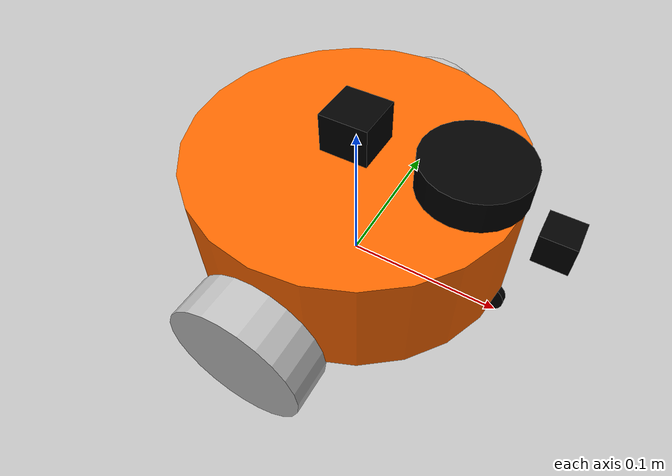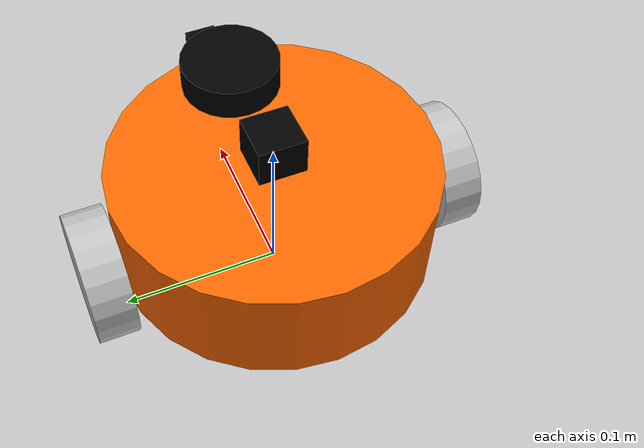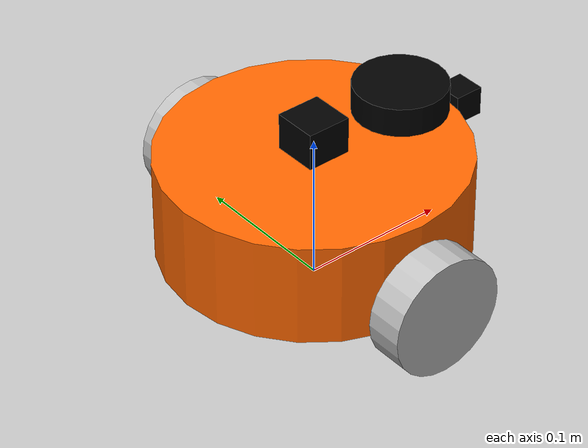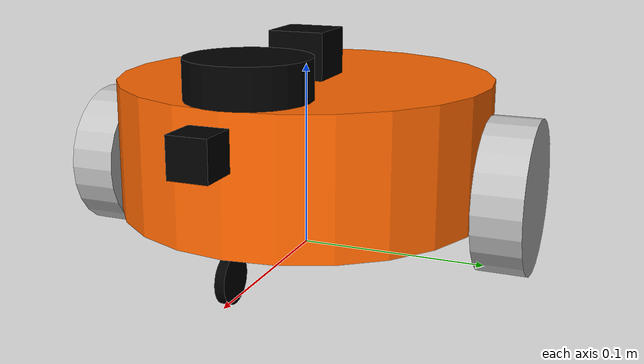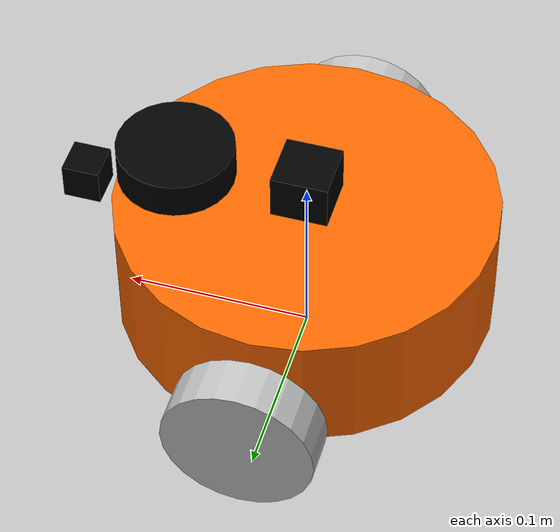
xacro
<?xml version="1.0"?>
<robot name="myrobot_diff_bot" xmlns:xacro="http://www.ros.org/wiki/xacro">

    <xacro:include filename="$(find myrobot_sim_gazebo)/xacro/myrobot_base.xacro" />
    <xacro:include filename="$(find myrobot_sim_gazebo)/xacro/sensor/imu_gazebo.xacro" />
    <xacro:include filename="$(find myrobot_sim_gazebo)/xacro/sensor/lidar_gazebo.xacro" />
    <xacro:include filename="$(find myrobot_sim_gazebo)/xacro/sensor/camera_gazebo.xacro" />

    <xacro:property name="rgbd_offset_x" value="${base_radius+0.02}" />
    <xacro:property name="rgbd_offset_y" value="0" />
    <xacro:property name="rgbd_offset_z" value="0.02" />

    <xacro:property name="lidar_offset_x" value="0.07" />
    <xacro:property name="lidar_offset_y" value="0" />
    <xacro:property name="lidar_offset_z" value="${base_height/2+0.01}" />

    <!-- Base -->
    <xacro:base_gazebo/>

    <!-- rgbd -->

    <!-- 保持与camera_link一致 -->

    <!-- Lidar -->
    <joint name="lidar_joint" type="fixed">
        <origin xyz="${lidar_offset_x} ${lidar_offset_y} ${lidar_offset_z}" rpy="0 0 0" />
        <parent link="base_link"/>
        <child link="laser_link"/>
    </joint>

    <xacro:lidar prefix="laser"/>

    <!-- imu -->
    <joint name="imu_joint" type="fixed">
        <origin xyz="0 0 ${base_height/2+0.01}" rpy="0 0 0" />
        <parent link="base_link"/>
        <child link="imu_link"/>
    </joint>

    <xacro:imu_xacro prefix="imu"/>

    <!-- rgbd_camera -->
    <joint name="rgbd_camera_joint" type="fixed">
        <origin xyz="${rgbd_offset_x} ${rgbd_offset_y} ${rgbd_offset_z}" rpy="0 0 0" />
        <parent link="base_link"/>
        <child link="camera_link"/>
    </joint>

    <xacro:mipi_camera prefix="camera"/>

</robot>

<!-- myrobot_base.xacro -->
<robot name="myrobot_base" xmlns:xacro="http://www.ros.org/wiki/xacro">

    <!-- PROPERTY LIST -->
    <xacro:property name="M_PI" value="3.1415926"/>

    <!-- base_link的质量、半径、高度 -->
    <xacro:property name="base_mass"   value="1" />
    <xacro:property name="base_radius"  value="0.1"/>
    <xacro:property name="base_height" value="0.07"/>

    <!-- 万向轮半径、轮子宽度、x轴偏移 -->
    <xacro:property name="caster_mass"    value="0.2" />
    <xacro:property name="caster_radius"  value="0.012"/>
    <xacro:property name="caster_length"    value="0.005" />
    <xacro:property name="caster_joint_x" value="${base_radius-0.02}"/>

    <!-- 运动轮质量、半径、宽度、x轴偏移、z相对于base_link的偏移 -->
    <xacro:property name="wheel_mass"   value="0.2" />
    <xacro:property name="wheel_radius" value="0.04"/>
    <xacro:property name="wheel_length" value="0.025"/>
    <xacro:property name="wheel_joint_x" value="0.0"/>
    <xacro:property name="wheel_joint_z" value="${caster_radius*2+base_height/2-wheel_radius}"/>

    <!-- Defining the colors used in this robot -->
    <material name="yellow">
        <color rgba="1 0.4 0 1"/>
    </material>
    <material name="black">
        <color rgba="0 0 0 0.95"/>
    </material>
    <material name="gray">
        <color rgba="0.75 0.75 0.75 1"/>
    </material>

    <!-- Macro for inertia matrix -->
    <xacro:macro name="sphere_inertial_matrix" params="m r">
        <inertial>
            <mass value="${m}" />
            <inertia ixx="${2*m*r*r/5}" ixy="0" ixz="0"
                iyy="${2*m*r*r/5}" iyz="0"
                izz="${2*m*r*r/5}" />
        </inertial>
    </xacro:macro>

    <xacro:macro name="cylinder_inertial_matrix" params="m r h">
        <inertial>
            <mass value="${m}" />
            <inertia ixx="${m*(3*r*r+h*h)/12}" ixy = "0" ixz = "0"
                iyy="${m*(3*r*r+h*h)/12}" iyz = "0"
                izz="${m*r*r/2}" />
        </inertial>
    </xacro:macro>

    <xacro:macro name="box_inertial_matrix" params="m l w h">
        <inertial>
             <mass value="${m}" />
             <inertia ixx="${m*(h*h + l*l)/12}" ixy = "0" ixz = "0"
                 iyy="${m*(w*w + l*l)/12}" iyz= "0"
                 izz="${m*(w*w + h*h)/12}" />
        </inertial>
    </xacro:macro>

    <!-- 运动轮的宏 -->
    <xacro:macro name="wheel" params="prefix reflect">
        <joint name="${prefix}_wheel_joint" type="continuous">
            <origin xyz="${wheel_joint_x} ${reflect*(base_radius+wheel_length/2)} ${-wheel_joint_z}" rpy="0 0 0"/>
            <parent link="base_link"/>
            <child link="${prefix}_wheel_link"/>
            <axis xyz="0 1 0"/>
        </joint>

        <link name="${prefix}_wheel_link">
            <visual>
                <origin xyz="0 0 0" rpy="${M_PI/2} 0 0" />
                <geometry>
                    <cylinder radius="${wheel_radius}" length = "${wheel_length}"/>
                </geometry>
                <material name="gray" />
            </visual>
            <collision>
                <origin xyz="0 0 0" rpy="${M_PI/2} 0 0" />
                <geometry>
                    <cylinder radius="${wheel_radius}" length = "${wheel_length}"/>
                </geometry>
            </collision>
            <xacro:cylinder_inertial_matrix  m="${wheel_mass}" r="${wheel_radius}" h="${wheel_length}" />
        </link>

        <gazebo reference="${prefix}_wheel_link">
            <material>Gazebo/Gray</material>
            <mu1>100000.0</mu1>
            <mu2>100000.0</mu2>
        </gazebo>

        <!-- Transmission is important to link the joints and the controller -->
        <transmission name="${prefix}_wheel_joint_trans">
            <type>transmission_interface/SimpleTransmission</type>
            <joint name="${prefix}_wheel_joint" >
                <hardwareInterface>hardware_interface/VelocityJointInterface</hardwareInterface>
            </joint>
            <actuator name="${prefix}_wheel_joint_motor">
                <hardwareInterface>hardware_interface/VelocityJointInterface</hardwareInterface>
                <mechanicalReduction>1</mechanicalReduction>
            </actuator>
        </transmission>
    </xacro:macro>

    <!-- 万向轮定义 -->
    <xacro:macro name="caster" params="prefix reflect">

        <joint name="${prefix}_top_caster_joint" type="continuous">
            <origin xyz="${reflect*caster_joint_x} 0 ${-(base_height/2)}" rpy="0 0 0"/>
            <parent link="base_link"/>
            <child link="${prefix}_top_link"/>
            <axis xyz="0 0 1"/>
        </joint>

        <link name="${prefix}_top_link">
            <visual>
                <origin xyz="0 0 0" rpy="0 0 0"/>
                <geometry>
                    <cylinder radius="${caster_radius}" length = "${caster_length/20}" />
                </geometry>
                <material name="black" />
            </visual>
            <collision>
                <origin xyz="0 0 0" rpy="0 0 0"/>
                <geometry>
                    <cylinder radius="${caster_radius}" length = "${caster_length/20}" />
                </geometry>
            </collision>
            <xacro:cylinder_inertial_matrix  m="${caster_mass/20}" r="${caster_radius}" h="${caster_length/20}" />
        </link>

        <joint name="${prefix}_caster_joint" type="continuous">
            <origin xyz="${caster_radius} 0 ${ -caster_radius}" rpy="0 0 0"/>
            <parent link="${prefix}_top_link"/>
            <child link="${prefix}_caster_link"/>
            <axis xyz="0 1 0"/>
        </joint>
        <link name="${prefix}_caster_link">
            <visual>
                <origin xyz="0 0 0" rpy="${M_PI/2} 0 0"/>
                <geometry>
                    <cylinder radius="${caster_radius}" length = "${caster_length}" />
                </geometry>
                <material name="black" />
            </visual>
            <collision>
                <origin xyz="0 0 0" rpy="${M_PI/2} 0 0"/>
                <geometry>
                    <cylinder radius="${caster_radius}" length = "${caster_length}" />
                </geometry>
            </collision>
            <xacro:cylinder_inertial_matrix  m="${caster_mass}" r="${caster_radius}" h="${caster_length}" />
        </link>

        <gazebo reference="${prefix}_caster_link">
            <material>Gazebo/Black</material>
        </gazebo>
    </xacro:macro>

    <xacro:macro name="base_gazebo">

        <link name="base_footprint"/>

        <joint name="base_footprint_joint" type="fixed">
            <origin xyz="0 0 ${base_height/2 + caster_radius*2}" rpy="0 0 0" />
            <parent link="base_footprint"/>
            <child link="base_link" />
        </joint>

        <link name="base_link">
            <visual>
                <origin xyz=" 0 0 0" rpy="0 0 0" />
                <geometry>

                    <cylinder radius="${base_radius}" length = "${base_height}"/>
                </geometry>
                <material name="yellow" />
            </visual>
            <collision>
                <origin xyz=" 0 0 0" rpy="0 0 0" />
                <geometry>
                    <cylinder radius="${base_radius}" length = "${base_height}"/>
                </geometry>
            </collision>
            <xacro:cylinder_inertial_matrix  m="${base_mass}" r="${base_radius}" h="${base_height}" />
        </link>

        <gazebo reference="base_link">
            <material>Gazebo/Yellow</material>
        </gazebo>

        <xacro:wheel prefix="left"  reflect="1"/>
        <xacro:wheel prefix="right" reflect="-1"/>

        <xacro:caster prefix="back"  reflect="-1"/>

        <xacro:caster prefix="front"  reflect="1"/>

        <!-- controller -->
        <gazebo>
            <plugin name="differential_drive_controller"
                    filename="libgazebo_ros_diff_drive.so">
                  <update_rate>30</update_rate>
                  <left_joint>left_wheel_joint</left_joint>
                  <right_joint>right_wheel_joint</right_joint>
                  <wheel_separation>${base_radius*2+wheel_length}</wheel_separation>
                  <wheel_diameter>${2*wheel_radius}</wheel_diameter>
                  <max_wheel_torque>10</max_wheel_torque>
                  <max_wheel_acceleration>1.0</max_wheel_acceleration>
                  <command_topic>cmd_vel</command_topic>
                  <publish_odom>true</publish_odom>
                  <publish_odom_tf>true</publish_odom_tf>
                  <publish_wheel_tf>true</publish_wheel_tf>
                  <odometry_topic>odom</odometry_topic>
                  <odometry_frame>odom</odometry_frame>
                  <robot_base_frame>base_footprint</robot_base_frame>
                  <odometry_source>1</odometry_source>
            </plugin>
        </gazebo>
    </xacro:macro>

</robot>

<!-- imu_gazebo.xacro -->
<robot xmlns:xacro="http://www.ros.org/wiki/xacro" name="imu">

    <xacro:macro name="imu_xacro" params="prefix:=imu">
        <!-- Create imu reference frame -->
        <link name="${prefix}_link">
            <inertial>
                <mass value="0.1" />
                <origin xyz="0 0 0" />
                <inertia ixx="0.01" ixy="0.0" ixz="0.0"
                         iyy="0.01" iyz="0.0"
                         izz="0.01" />
            </inertial>

            <visual>
                <origin xyz=" 0 0 0 " rpy="0 0 0" />
                <geometry>
                    <box size="0.03 0.03 0.03" />
                </geometry>
                <material name="black"/>
            </visual>

            <collision>
                <origin xyz="0.0 0.0 0.0" rpy="0 0 0" />
                <geometry>
                    <box size="0.03 0.03 0.03" />
                </geometry>
            </collision>
        </link>
        <gazebo reference="${prefix}_link">
            <material>Gazebo/Red</material>
        </gazebo>

        <gazebo reference="${prefix}_link">
            <gravity>true</gravity>
            <sensor name="${prefix}" type="imu">
                <always_on>true</always_on>
                <update_rate>20</update_rate>
                <visualize>true</visualize>
                <imu>
                    <angular_velocity>
                    <x>
                        <noise type="gaussian">
                        <mean>0.0</mean>
                        <stddev>2e-4</stddev>
                        <bias_mean>0.0000075</bias_mean>
                        <bias_stddev>0.0000008</bias_stddev>
                        </noise>
                    </x>
                    <y>
                        <noise type="gaussian">
                        <mean>0.0</mean>
                        <stddev>2e-4</stddev>
                        <bias_mean>0.0000075</bias_mean>
                        <bias_stddev>0.0000008</bias_stddev>
                        </noise>
                    </y>
                    <z>
                        <noise type="gaussian">
                        <mean>0.0</mean>
                        <stddev>2e-4</stddev>
                        <bias_mean>0.0000075</bias_mean>
                        <bias_stddev>0.0000008</bias_stddev>
                        </noise>
                    </z>
                    </angular_velocity>
                    <linear_acceleration>
                    <x>
                        <noise type="gaussian">
                        <mean>0.0</mean>
                        <stddev>1.7e-2</stddev>
                        <bias_mean>0.1</bias_mean>
                        <bias_stddev>0.001</bias_stddev>
                        </noise>
                    </x>
                    <y>
                        <noise type="gaussian">
                        <mean>0.0</mean>
                        <stddev>1.7e-2</stddev>
                        <bias_mean>0.1</bias_mean>
                        <bias_stddev>0.001</bias_stddev>
                        </noise>
                    </y>
                    <z>
                        <noise type="gaussian">
                        <mean>0.0</mean>
                        <stddev>1.7e-2</stddev>
                        <bias_mean>0.1</bias_mean>
                        <bias_stddev>0.001</bias_stddev>
                        </noise>
                    </z>
                    </linear_acceleration>
                </imu>
                <plugin filename="libgazebo_ros_imu_sensor.so" name="imu_plugin">
                    <ros>
                        <remapping>~/out:=${prefix}/data_raw</remapping>
                    </ros>
                    <frame_name>${prefix}_link</frame_name>
                    <initialOrientationAsReference>false</initialOrientationAsReference>
                </plugin>
                <pose>0 0 0 0 0 0</pose>
            </sensor>
        </gazebo>

    </xacro:macro>
</robot>

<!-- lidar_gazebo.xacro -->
<robot xmlns:xacro="http://www.ros.org/wiki/xacro" name="laser">

    <xacro:macro name="lidar" params="prefix:=laser">
        <!-- Create laser reference frame -->
        <link name="${prefix}_link">
            <inertial>
                <mass value="0.1" />
                <origin xyz="0 0 0" />
                <inertia ixx="0.01" ixy="0.0" ixz="0.0"
                         iyy="0.01" iyz="0.0"
                         izz="0.01" />
            </inertial>

            <visual>
                <origin xyz=" 0 0 0 " rpy="0 0 0" />
                <geometry>
                    <cylinder length="0.02" radius="0.031"/>
                </geometry>
                <material name="black"/>
            </visual>

            <collision>
                <origin xyz="0.0 0.0 0.0" rpy="0 0 0" />
                <geometry>
                    <cylinder length="0.02" radius="0.031"/>
                </geometry>
            </collision>
        </link>
        <gazebo reference="${prefix}_link">
            <material>Gazebo/Black</material>
        </gazebo>

        <gazebo reference="${prefix}_link">
            <sensor type="ray" name="lidar">
                <update_rate>10</update_rate>
                <visualize>false</visualize>
                <ray>
                    <scan>
                      <horizontal>
                        <samples>360</samples>
                        <resolution>1</resolution>
                        <min_angle>-3.14</min_angle>
                        <max_angle>3.14</max_angle>
                      </horizontal>
                    </scan>
                    <range>
                      <min>0.10</min>
                      <max>15.0</max>
                      <resolution>0.01</resolution>
                    </range>
                    <noise>
                      <type>gaussian</type>
                      <mean>0.0</mean>
                      <stddev>0.01</stddev>
                    </noise>
                </ray>
                <plugin name="gazebo_lidar" filename="libgazebo_ros_ray_sensor.so">
                    <ros>
                        <namespace>/</namespace>
                        <remapping>~/out:=scan</remapping>
                    </ros>
                    <output_type>sensor_msgs/LaserScan</output_type>
                    <frame_name>${prefix}_link</frame_name>
                </plugin>
            </sensor>
        </gazebo>

    </xacro:macro>
</robot>

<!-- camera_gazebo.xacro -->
<robot xmlns:xacro="http://www.ros.org/wiki/xacro" name="camera">

    <xacro:macro name="mipi_camera" params="prefix:=camera">
        <!-- Create laser reference frame -->
        <link name="${prefix}_link">
            <inertial>
                <mass value="0.1" />
                <origin xyz="0 0 0" />
                <inertia ixx="0.01" ixy="0.0" ixz="0.0"
                         iyy="0.01" iyz="0.0"
                         izz="0.01" />
            </inertial>

            <visual>
                <origin xyz=" 0 0 0 " rpy="0 0 0" />
                <geometry>
                    <box size="0.02 0.02 0.02" />
                </geometry>
                <material name="black"/>
            </visual>

            <collision>
                <origin xyz="0.0 0.0 0.0" rpy="0 0 0" />
                <geometry>
                    <box size="0.02 0.02 0.02" />
                </geometry>
            </collision>
        </link>
        <gazebo reference="${prefix}_link">
            <material>Gazebo/Black</material>
        </gazebo>

        <gazebo reference="${prefix}_link">
            <sensor type="${prefix}" name="camera_node">
                <update_rate>30.0</update_rate>
                <camera name="head">
                    <horizontal_fov>1.3962634</horizontal_fov>
                    <image>
                        <width>1280</width>
                        <height>720</height>
                        <format>R8G8B8</format>
                    </image>
                    <clip>
                        <near>0.02</near>
                        <far>300</far>
                    </clip>
                    <noise>
                        <type>gaussian</type>
                        <mean>0.0</mean>
                        <stddev>0.007</stddev>
                    </noise>
                </camera>
                <plugin name="gazebo_camera" filename="libgazebo_ros_camera.so">
				    <ros>
				    </ros>
				    <camera_name>${prefix}</camera_name>
				    <frame_name>${prefix}_link</frame_name>
				    <hack_baseline>0.2</hack_baseline>
                </plugin>
            </sensor>
        </gazebo>

    </xacro:macro>
</robot>
